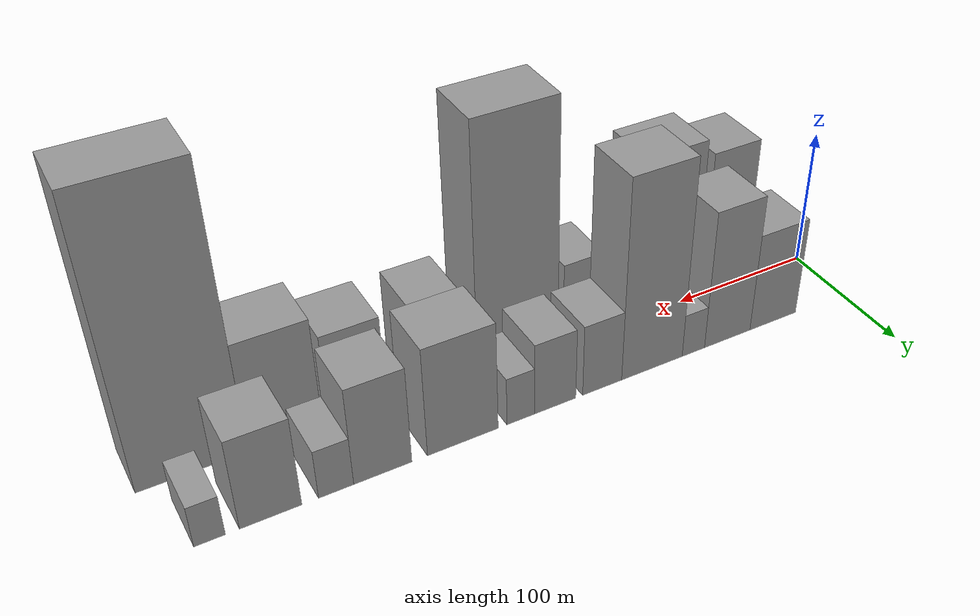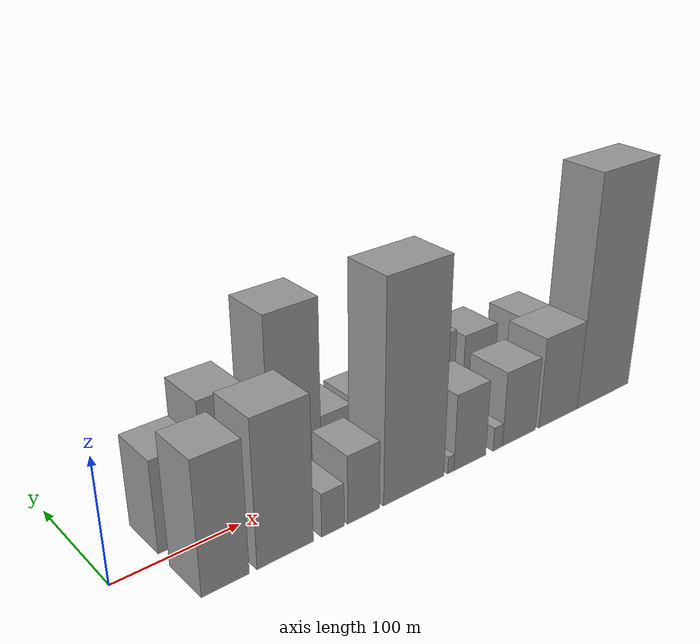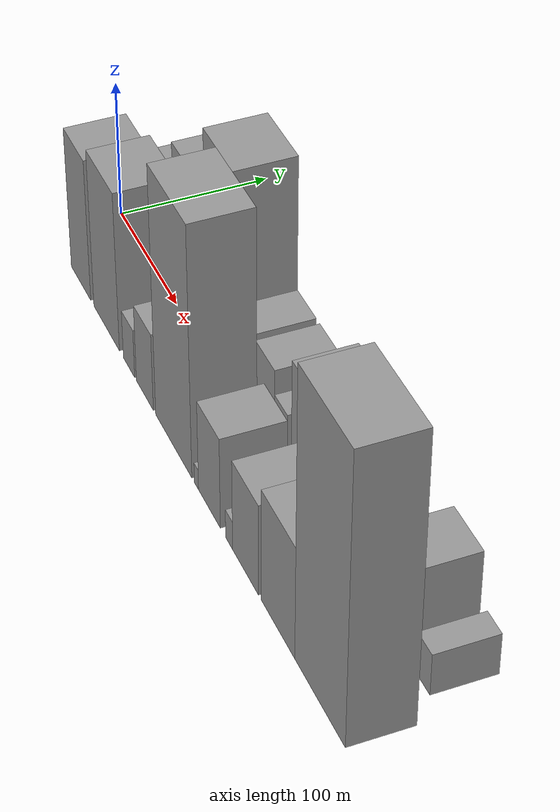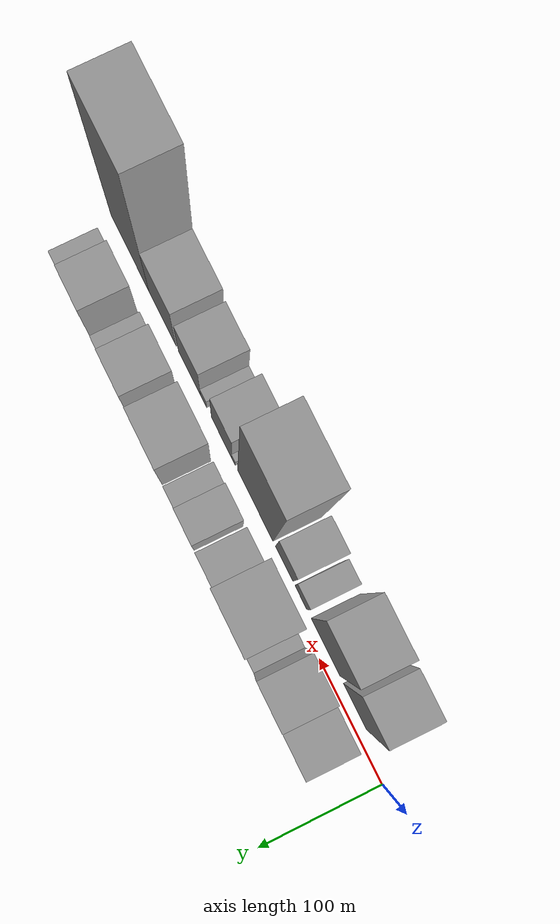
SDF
<sdf version="1.6">
 <world name="default">
  <scene>
   <sky><clouds><speed>12</speed></clouds></sky>
   <ambient>0.4 0.4 0.4 1</ambient>
   <background>0.7 0.7 0.7 1</background>
   <shadows>1</shadows>
  </scene>
  <gravity>0 0 -9.8066</gravity>
  <magnetic_field>6e-06 2.3e-05 -4.2e-05</magnetic_field>
  <physics default="0" name="default_physics" type="ode">
   <ode>
    <solver>
     <type>quick</type>
     <iters>10</iters>
     <sor>1.0</sor>
     <use_dynamic_moi_rescaling>0</use_dynamic_moi_rescaling>
    </solver>
    <constraints>
     <cfm>0</cfm>
     <erp>0.2</erp>
     <contact_max_correcting_vel>100</contact_max_correcting_vel>
     <contact_surface_layer>0.001</contact_surface_layer>
    </constraints>
   </ode>
   <max_step_size>0.004</max_step_size>
   <real_time_factor>1</real_time_factor>
   <real_time_update_rate>250</real_time_update_rate>
  </physics>
  <light name="sun" type="directional">
   <pose>0 0 10 0 0 0</pose>
   <diffuse>0.8 0.8 0.8 1</diffuse>
   <specular>0.2 0.2 0.2 1</specular>
   <attenuation>
    <range>1000</range>
    <constant>0.9</constant>
    <linear>0.01</linear>
    <quadratic>0.001</quadratic>
   </attenuation>
   <direction>-0.5 0.1 -0.9</direction>
  </light>
  <model name="building_1">
   <static>1</static>
   <pose>58.9112 27.5000 0 0.000000 0.000000 1.570796</pose>
   <link name="link">
    <pose>0 0 37.50 0 0 0</pose>
    <collision name="collision"><geometry><box><size>40.0000 37.8224 75.0000</size></box></geometry></collision>
    <visual name="visual">
     <cast_shadows>0</cast_shadows>
     <geometry><box><size>40.0000 37.8224 75.0000</size></box></geometry>
     <material>
      <script>
       <uri>model://grey_wall/materials/scripts</uri>
       <uri>model://grey_wall/materials/textures</uri>
       <name>vrc/grey_wall</name>
      </script>
     </material>
    </visual>
   </link>
  </model>
  <model name="building_2">
   <static>1</static>
   <pose>96.0253 27.5000 0 0.000000 0.000000 1.570796</pose>
   <link name="link">
    <pose>0 0 52.50 0 0 0</pose>
    <collision name="collision"><geometry><box><size>40.0000 36.4057 105.0000</size></box></geometry></collision>
    <visual name="visual">
     <cast_shadows>0</cast_shadows>
     <geometry><box><size>40.0000 36.4057 105.0000</size></box></geometry>
     <material>
      <script>
       <uri>model://grey_wall/materials/scripts</uri>
       <uri>model://grey_wall/materials/textures</uri>
       <name>vrc/grey_wall</name>
      </script>
     </material>
    </visual>
   </link>
  </model>
  <model name="building_3">
   <static>1</static>
   <pose>122.9657 27.5000 0 0.000000 0.000000 1.570796</pose>
   <link name="link">
    <pose>0 0 16.50 0 0 0</pose>
    <collision name="collision"><geometry><box><size>40.0000 17.4751 33.0000</size></box></geometry></collision>
    <visual name="visual">
     <cast_shadows>0</cast_shadows>
     <geometry><box><size>40.0000 17.4751 33.0000</size></box></geometry>
     <material>
      <script>
       <uri>model://grey_wall/materials/scripts</uri>
       <uri>model://grey_wall/materials/textures</uri>
       <name>vrc/grey_wall</name>
      </script>
     </material>
    </visual>
   </link>
  </model>
  <model name="building_4">
   <static>1</static>
   <pose>154.6635 27.5000 0 0.000000 0.000000 1.570796</pose>
   <link name="link">
    <pose>0 0 75.00 0 0 0</pose>
    <collision name="collision"><geometry><box><size>40.0000 45.9206 150.0000</size></box></geometry></collision>
    <visual name="visual">
     <cast_shadows>0</cast_shadows>
     <geometry><box><size>40.0000 45.9206 150.0000</size></box></geometry>
     <material>
      <script>
       <uri>model://grey_wall/materials/scripts</uri>
       <uri>model://grey_wall/materials/textures</uri>
       <name>vrc/grey_wall</name>
      </script>
     </material>
    </visual>
   </link>
  </model>
  <model name="building_5">
   <static>1</static>
   <pose>191.8760 27.5000 0 0.000000 0.000000 1.570796</pose>
   <link name="link">
    <pose>0 0 27.00 0 0 0</pose>
    <collision name="collision"><geometry><box><size>40.0000 28.5044 54.0000</size></box></geometry></collision>
    <visual name="visual">
     <cast_shadows>0</cast_shadows>
     <geometry><box><size>40.0000 28.5044 54.0000</size></box></geometry>
     <material>
      <script>
       <uri>model://grey_wall/materials/scripts</uri>
       <uri>model://grey_wall/materials/textures</uri>
       <name>vrc/grey_wall</name>
      </script>
     </material>
    </visual>
   </link>
  </model>
  <model name="building_6">
   <static>1</static>
   <pose>225.6103 27.5000 0 0.000000 0.000000 1.570796</pose>
   <link name="link">
    <pose>0 0 27.00 0 0 0</pose>
    <collision name="collision"><geometry><box><size>40.0000 28.9641 54.0000</size></box></geometry></collision>
    <visual name="visual">
     <cast_shadows>0</cast_shadows>
     <geometry><box><size>40.0000 28.9641 54.0000</size></box></geometry>
     <material>
      <script>
       <uri>model://grey_wall/materials/scripts</uri>
       <uri>model://grey_wall/materials/textures</uri>
       <name>vrc/grey_wall</name>
      </script>
     </material>
    </visual>
   </link>
  </model>
  <model name="building_7">
   <static>1</static>
   <pose>249.6914 27.5000 0 0.000000 0.000000 1.570796</pose>
   <link name="link">
    <pose>0 0 18.00 0 0 0</pose>
    <collision name="collision"><geometry><box><size>40.0000 19.1980 36.0000</size></box></geometry></collision>
    <visual name="visual">
     <cast_shadows>0</cast_shadows>
     <geometry><box><size>40.0000 19.1980 36.0000</size></box></geometry>
     <material>
      <script>
       <uri>model://grey_wall/materials/scripts</uri>
       <uri>model://grey_wall/materials/textures</uri>
       <name>vrc/grey_wall</name>
      </script>
     </material>
    </visual>
   </link>
  </model>
  <model name="building_8">
   <static>1</static>
   <pose>288.7685 27.5000 0 0.000000 0.000000 1.570796</pose>
   <link name="link">
    <pose>0 0 40.50 0 0 0</pose>
    <collision name="collision"><geometry><box><size>40.0000 46.9563 81.0000</size></box></geometry></collision>
    <visual name="visual">
     <cast_shadows>0</cast_shadows>
     <geometry><box><size>40.0000 46.9563 81.0000</size></box></geometry>
     <material>
      <script>
       <uri>model://grey_wall/materials/scripts</uri>
       <uri>model://grey_wall/materials/textures</uri>
       <name>vrc/grey_wall</name>
      </script>
     </material>
    </visual>
   </link>
  </model>
  <model name="building_9">
   <static>1</static>
   <pose>340.5489 27.5000 0 0.000000 0.000000 1.570796</pose>
   <link name="link">
    <pose>0 0 36.00 0 0 0</pose>
    <collision name="collision"><geometry><box><size>40.0000 36.6044 72.0000</size></box></geometry></collision>
    <visual name="visual">
     <cast_shadows>0</cast_shadows>
     <geometry><box><size>40.0000 36.6044 72.0000</size></box></geometry>
     <material>
      <script>
       <uri>model://grey_wall/materials/scripts</uri>
       <uri>model://grey_wall/materials/textures</uri>
       <name>vrc/grey_wall</name>
      </script>
     </material>
    </visual>
   </link>
  </model>
  <model name="building_10">
   <static>1</static>
   <pose>369.5838 27.5000 0 0.000000 0.000000 1.570796</pose>
   <link name="link">
    <pose>0 0 18.00 0 0 0</pose>
    <collision name="collision"><geometry><box><size>40.0000 21.4655 36.0000</size></box></geometry></collision>
    <visual name="visual">
     <cast_shadows>0</cast_shadows>
     <geometry><box><size>40.0000 21.4655 36.0000</size></box></geometry>
     <material>
      <script>
       <uri>model://grey_wall/materials/scripts</uri>
       <uri>model://grey_wall/materials/textures</uri>
       <name>vrc/grey_wall</name>
      </script>
     </material>
    </visual>
   </link>
  </model>
  <model name="building_11">
   <static>1</static>
   <pose>408.5674 27.5000 0 0.000000 0.000000 1.570796</pose>
   <link name="link">
    <pose>0 0 33.00 0 0 0</pose>
    <collision name="collision"><geometry><box><size>40.0000 36.5016 66.0000</size></box></geometry></collision>
    <visual name="visual">
     <cast_shadows>0</cast_shadows>
     <geometry><box><size>40.0000 36.5016 66.0000</size></box></geometry>
     <material>
      <script>
       <uri>model://grey_wall/materials/scripts</uri>
       <uri>model://grey_wall/materials/textures</uri>
       <name>vrc/grey_wall</name>
      </script>
     </material>
    </visual>
   </link>
  </model>
  <model name="building_12">
   <static>1</static>
   <pose>443.7434 27.5000 0 0.000000 0.000000 1.570796</pose>
   <link name="link">
    <pose>0 0 15.00 0 0 0</pose>
    <collision name="collision"><geometry><box><size>40.0000 17.8504 30.0000</size></box></geometry></collision>
    <visual name="visual">
     <cast_shadows>0</cast_shadows>
     <geometry><box><size>40.0000 17.8504 30.0000</size></box></geometry>
     <material>
      <script>
       <uri>model://grey_wall/materials/scripts</uri>
       <uri>model://grey_wall/materials/textures</uri>
       <name>vrc/grey_wall</name>
      </script>
     </material>
    </visual>
   </link>
  </model>
  <model name="building_13">
   <static>1</static>
   <pose>58.2662 -27.5000 0 0.000000 0.000000 1.570796</pose>
   <link name="link">
    <pose>0 0 52.50 0 0 0</pose>
    <collision name="collision"><geometry><box><size>40.0000 36.5324 105.0000</size></box></geometry></collision>
    <visual name="visual">
     <cast_shadows>0</cast_shadows>
     <geometry><box><size>40.0000 36.5324 105.0000</size></box></geometry>
     <material>
      <script>
       <uri>model://grey_wall/materials/scripts</uri>
       <uri>model://grey_wall/materials/textures</uri>
       <name>vrc/grey_wall</name>
      </script>
     </material>
    </visual>
   </link>
  </model>
  <model name="building_14">
   <static>1</static>
   <pose>105.6977 -27.5000 0 0.000000 0.000000 1.570796</pose>
   <link name="link">
    <pose>0 0 58.50 0 0 0</pose>
    <collision name="collision"><geometry><box><size>40.0000 46.3305 117.0000</size></box></geometry></collision>
    <visual name="visual">
     <cast_shadows>0</cast_shadows>
     <geometry><box><size>40.0000 46.3305 117.0000</size></box></geometry>
     <material>
      <script>
       <uri>model://grey_wall/materials/scripts</uri>
       <uri>model://grey_wall/materials/textures</uri>
       <name>vrc/grey_wall</name>
      </script>
     </material>
    </visual>
   </link>
  </model>
  <model name="building_15">
   <static>1</static>
   <pose>145.7606 -27.5000 0 0.000000 0.000000 1.570796</pose>
   <link name="link">
    <pose>0 0 18.00 0 0 0</pose>
    <collision name="collision"><geometry><box><size>40.0000 19.7955 36.0000</size></box></geometry></collision>
    <visual name="visual">
     <cast_shadows>0</cast_shadows>
     <geometry><box><size>40.0000 19.7955 36.0000</size></box></geometry>
     <material>
      <script>
       <uri>model://grey_wall/materials/scripts</uri>
       <uri>model://grey_wall/materials/textures</uri>
       <name>vrc/grey_wall</name>
      </script>
     </material>
    </visual>
   </link>
  </model>
  <model name="building_16">
   <static>1</static>
   <pose>173.1249 -27.5000 0 0.000000 0.000000 1.570796</pose>
   <link name="link">
    <pose>0 0 28.50 0 0 0</pose>
    <collision name="collision"><geometry><box><size>40.0000 28.9332 57.0000</size></box></geometry></collision>
    <visual name="visual">
     <cast_shadows>0</cast_shadows>
     <geometry><box><size>40.0000 28.9332 57.0000</size></box></geometry>
     <material>
      <script>
       <uri>model://grey_wall/materials/scripts</uri>
       <uri>model://grey_wall/materials/textures</uri>
       <name>vrc/grey_wall</name>
      </script>
     </material>
    </visual>
   </link>
  </model>
  <model name="building_17">
   <static>1</static>
   <pose>221.0845 -27.5000 0 0.000000 0.000000 1.570796</pose>
   <link name="link">
    <pose>0 0 90.00 0 0 0</pose>
    <collision name="collision"><geometry><box><size>40.0000 58.9860 180.0000</size></box></geometry></collision>
    <visual name="visual">
     <cast_shadows>0</cast_shadows>
     <geometry><box><size>40.0000 58.9860 180.0000</size></box></geometry>
     <material>
      <script>
       <uri>model://grey_wall/materials/scripts</uri>
       <uri>model://grey_wall/materials/textures</uri>
       <name>vrc/grey_wall</name>
      </script>
     </material>
    </visual>
   </link>
  </model>
  <model name="building_18">
   <static>1</static>
   <pose>257.8445 -27.5000 0 0.000000 0.000000 1.570796</pose>
   <link name="link">
    <pose>0 0 7.50 0 0 0</pose>
    <collision name="collision"><geometry><box><size>40.0000 6.5340 15.0000</size></box></geometry></collision>
    <visual name="visual">
     <cast_shadows>0</cast_shadows>
     <geometry><box><size>40.0000 6.5340 15.0000</size></box></geometry>
     <material>
      <script>
       <uri>model://grey_wall/materials/scripts</uri>
       <uri>model://grey_wall/materials/textures</uri>
       <name>vrc/grey_wall</name>
      </script>
     </material>
    </visual>
   </link>
  </model>
  <model name="building_19">
   <static>1</static>
   <pose>278.0468 -27.5000 0 0.000000 0.000000 1.570796</pose>
   <link name="link">
    <pose>0 0 33.00 0 0 0</pose>
    <collision name="collision"><geometry><box><size>40.0000 33.8707 66.0000</size></box></geometry></collision>
    <visual name="visual">
     <cast_shadows>0</cast_shadows>
     <geometry><box><size>40.0000 33.8707 66.0000</size></box></geometry>
     <material>
      <script>
       <uri>model://grey_wall/materials/scripts</uri>
       <uri>model://grey_wall/materials/textures</uri>
       <name>vrc/grey_wall</name>
      </script>
     </material>
    </visual>
   </link>
  </model>
  <model name="building_20">
   <static>1</static>
   <pose>308.2123 -27.5000 0 0.000000 0.000000 1.570796</pose>
   <link name="link">
    <pose>0 0 10.50 0 0 0</pose>
    <collision name="collision"><geometry><box><size>40.0000 10.4602 21.0000</size></box></geometry></collision>
    <visual name="visual">
     <cast_shadows>0</cast_shadows>
     <geometry><box><size>40.0000 10.4602 21.0000</size></box></geometry>
     <material>
      <script>
       <uri>model://grey_wall/materials/scripts</uri>
       <uri>model://grey_wall/materials/textures</uri>
       <name>vrc/grey_wall</name>
      </script>
     </material>
    </visual>
   </link>
  </model>
  <model name="building_21">
   <static>1</static>
   <pose>332.4235 -27.5000 0 0.000000 0.000000 1.570796</pose>
   <link name="link">
    <pose>0 0 33.00 0 0 0</pose>
    <collision name="collision"><geometry><box><size>40.0000 37.9622 66.0000</size></box></geometry></collision>
    <visual name="visual">
     <cast_shadows>0</cast_shadows>
     <geometry><box><size>40.0000 37.9622 66.0000</size></box></geometry>
     <material>
      <script>
       <uri>model://grey_wall/materials/scripts</uri>
       <uri>model://grey_wall/materials/textures</uri>
       <name>vrc/grey_wall</name>
      </script>
     </material>
    </visual>
   </link>
  </model>
  <model name="building_22">
   <static>1</static>
   <pose>378.8944 -27.5000 0 0.000000 0.000000 1.570796</pose>
   <link name="link">
    <pose>0 0 40.50 0 0 0</pose>
    <collision name="collision"><geometry><box><size>40.0000 46.9795 81.0000</size></box></geometry></collision>
    <visual name="visual">
     <cast_shadows>0</cast_shadows>
     <geometry><box><size>40.0000 46.9795 81.0000</size></box></geometry>
     <material>
      <script>
       <uri>model://grey_wall/materials/scripts</uri>
       <uri>model://grey_wall/materials/textures</uri>
       <name>vrc/grey_wall</name>
      </script>
     </material>
    </visual>
   </link>
  </model>
  <model name="building_23">
   <static>1</static>
   <pose>435.7940 -27.5000 0 0.000000 0.000000 1.570796</pose>
   <link name="link">
    <pose>0 0 102.00 0 0 0</pose>
    <collision name="collision"><geometry><box><size>40.0000 66.8198 204.0000</size></box></geometry></collision>
    <visual name="visual">
     <cast_shadows>0</cast_shadows>
     <geometry><box><size>40.0000 66.8198 204.0000</size></box></geometry>
     <material>
      <script>
       <uri>model://grey_wall/materials/scripts</uri>
       <uri>model://grey_wall/materials/textures</uri>
       <name>vrc/grey_wall</name>
      </script>
     </material>
    </visual>
   </link>
  </model>
 </world>
</sdf>
